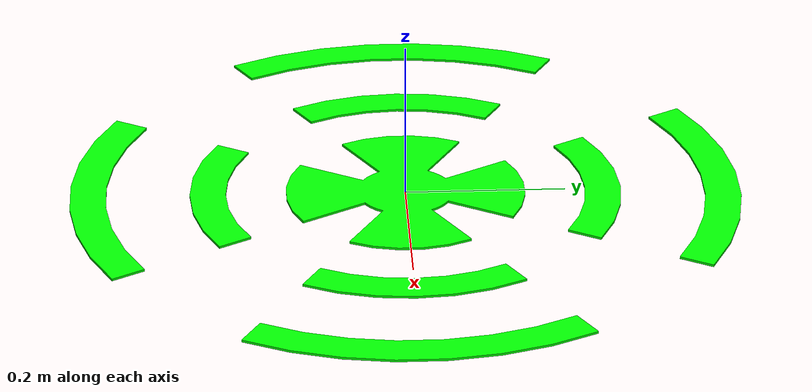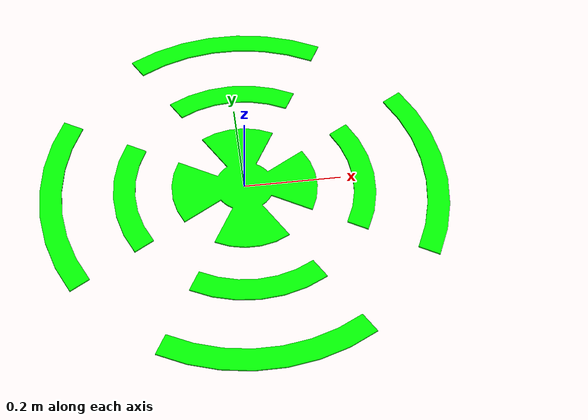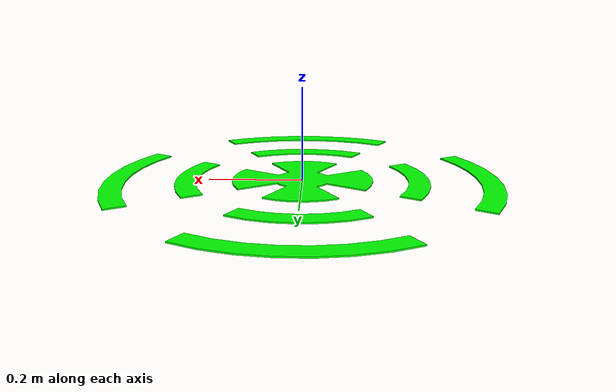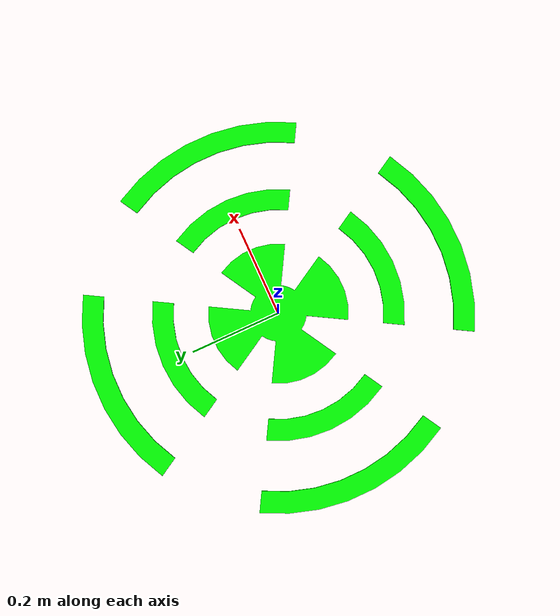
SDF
<?xml version='1.0'?>
<sdf version='1.6'>
  <model name="sound_wave">
    <pose>0 0 0  0 0 0</pose>
    <static>true</static>
    <link name="body">
      <visual name="visual">
        <geometry>
          <mesh>
            <scale>0.3 0.3 0.01</scale>
            <uri>model://sound_wave/sound_wave.stl</uri>
          </mesh>
        </geometry>
        <material>
          <lighting>true</lighting>
          <ambient>1 0 0 1</ambient>
          <diffuse>0 1 0 1</diffuse>
          <specular>0.1 0.1 0.1 1</specular>
          <emissive>0 0 0 0</emissive>
        </material>
      </visual>
    </link>
  </model>
</sdf>
